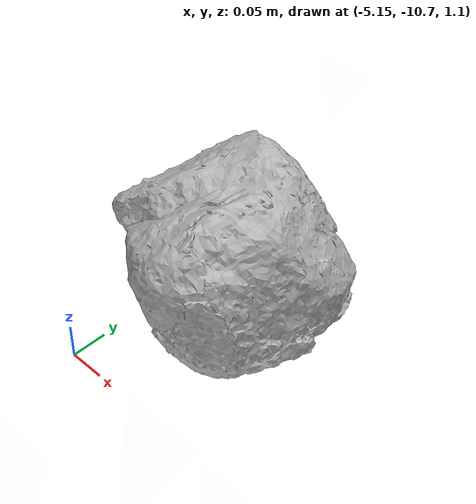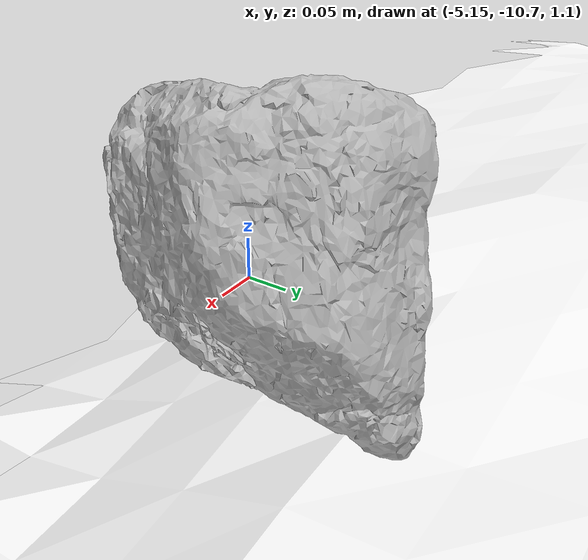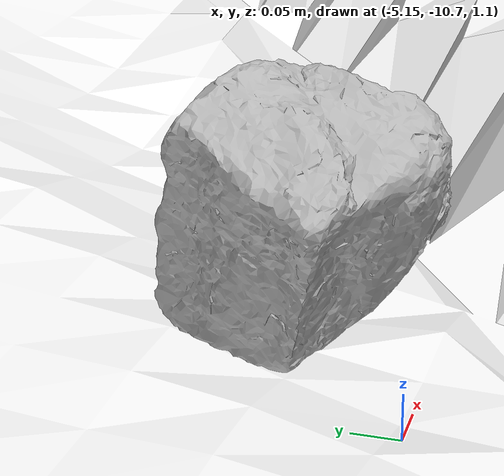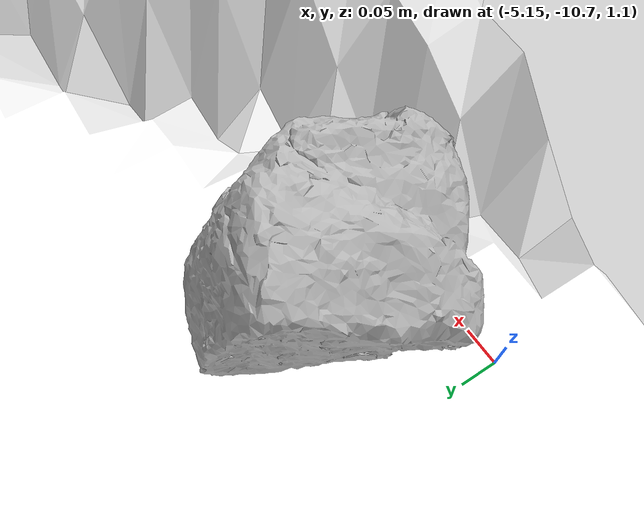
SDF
<?xml version='1.0' encoding='utf-8'?>
<sdf version="1.7">
  <world name="marsyard">
    <gravity>0 0 -9.81</gravity>
    <physics name="dart_physics" type="ignored">
      <max_step_size>0.003</max_step_size>
      <real_time_update_rate>333</real_time_update_rate>
      <real_time_factor>1.0</real_time_factor>
    </physics>
    <plugin filename="ignition-gazebo-physics-system" name="ignition::gazebo::systems::Physics" />
    <plugin filename="ignition-gazebo-user-commands-system" name="ignition::gazebo::systems::UserCommands" />
    <plugin filename="ignition-gazebo-scene-broadcaster-system" name="ignition::gazebo::systems::SceneBroadcaster" />
    <plugin filename="ignition-gazebo-contact-system" name="ignition::gazebo::systems::Contact" />
    <scene>
      <ambient>0.95 0.95 0.95 1</ambient>
      <background>0.70 0.70 0.70 1</background>
      <shadows>false</shadows>
    </scene>
    <light type="directional" name="sun">
      <cast_shadows>false</cast_shadows>
      <pose>0 0 30 0 0 0</pose>
      <diffuse>1 1 1 1</diffuse>
      <specular>0.15 0.15 0.15 1</specular>
      <direction>-0.35 0.1 -0.93</direction>
    </light>
    <include>
      <uri>model://mars_yard</uri>
      <pose>0 0 0 0 0 0</pose>
    </include>
    <model name="Rock_1">
      <static>true</static>
      <pose>-5.0743 -10.5129 1.2089 0.2391 -0.1442 -2.1336</pose>
      <link name="link">
        <visual name="visual">
          <geometry>
            <mesh>
              <uri>package://rock_generator/rocks_ws/rock_3/meshes/rock_3.stl</uri>
            </mesh>
          </geometry>
        </visual>
        <collision name="collision">
          <geometry>
            <mesh>
              <uri>package://rock_generator/rocks_ws/rock_3/meshes/rock_3.stl</uri>
            </mesh>
          </geometry>
        </collision>
      </link>
    </model>
  </world>
</sdf>

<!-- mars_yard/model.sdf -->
<sdf version="1.7">
  <model name="mars_yard">
    <static>true</static><self_collide>false</self_collide>
    <link name="terrain_link">
      <visual name="terrain_visual">
        <cast_shadows>false</cast_shadows>
        <geometry>
          <mesh>
            <uri>model://mars_yard/meshes/mars_yard_exact_visual_closed.obj</uri>
          </mesh>
        </geometry>
        <material>
          <ambient>1 1 1 1</ambient>
          <diffuse>1 1 1 1</diffuse>
          <double_sided>true</double_sided>
          <pbr>
            <metal>
              <albedo_map>model://mars_yard/materials/textures/marsyard_coordsys_exact_closed.png</albedo_map>
            </metal>
          </pbr>
        </material>
      </visual>
      <collision name="terrain_collision">
        <geometry><mesh><uri>model://mars_yard/meshes/mars_yard_exact_collision.obj</uri></mesh></geometry>
        <surface>
          <friction><ode><mu>1.20</mu><mu2>1.15</mu2><slip1>0.008</slip1><slip2>0.012</slip2></ode></friction>
          <contact><ode><kp>25000000</kp><kd>3</kd><max_vel>0.05</max_vel><min_depth>0.001</min_depth></ode></contact>
          <bounce><restitution_coefficient>0.0</restitution_coefficient><threshold>100000</threshold></bounce>
        </surface>
      </collision>
    </link>
  </model>
</sdf>
